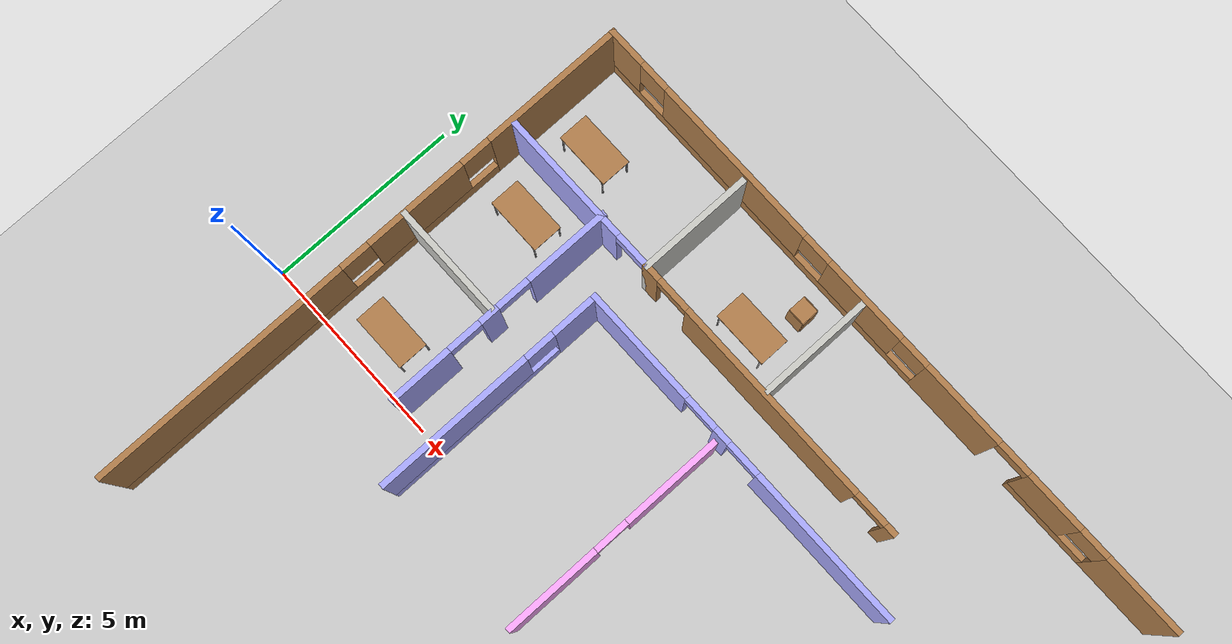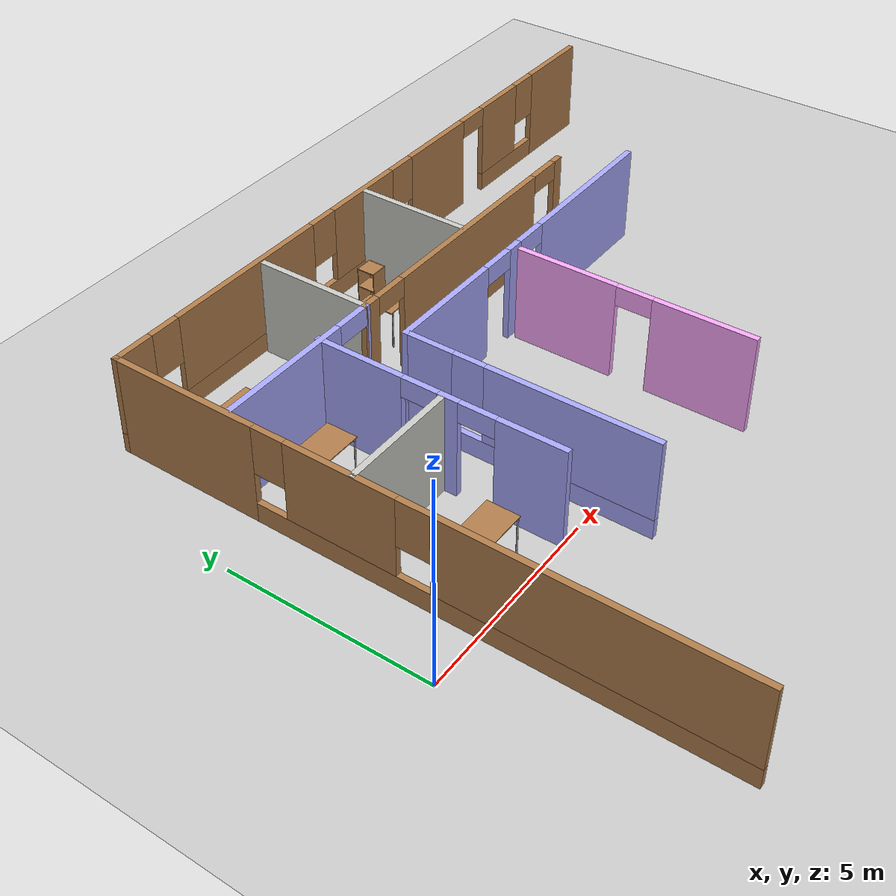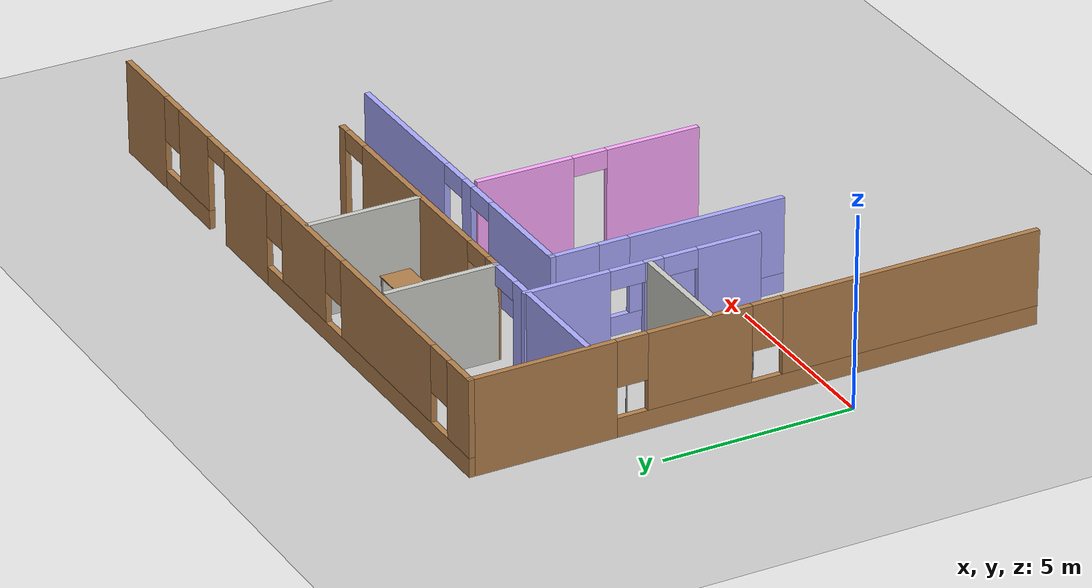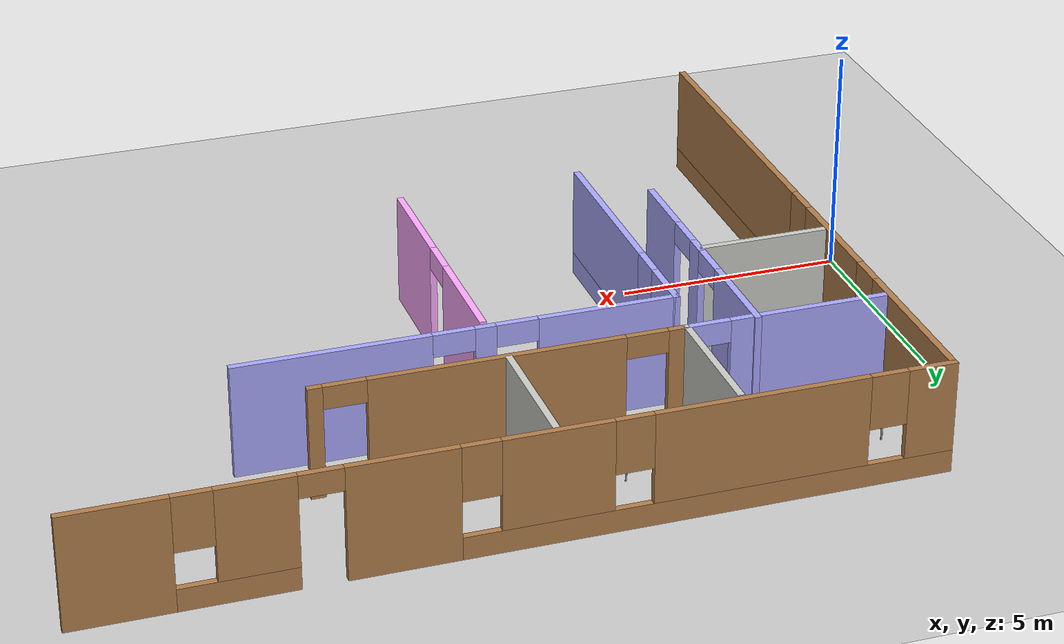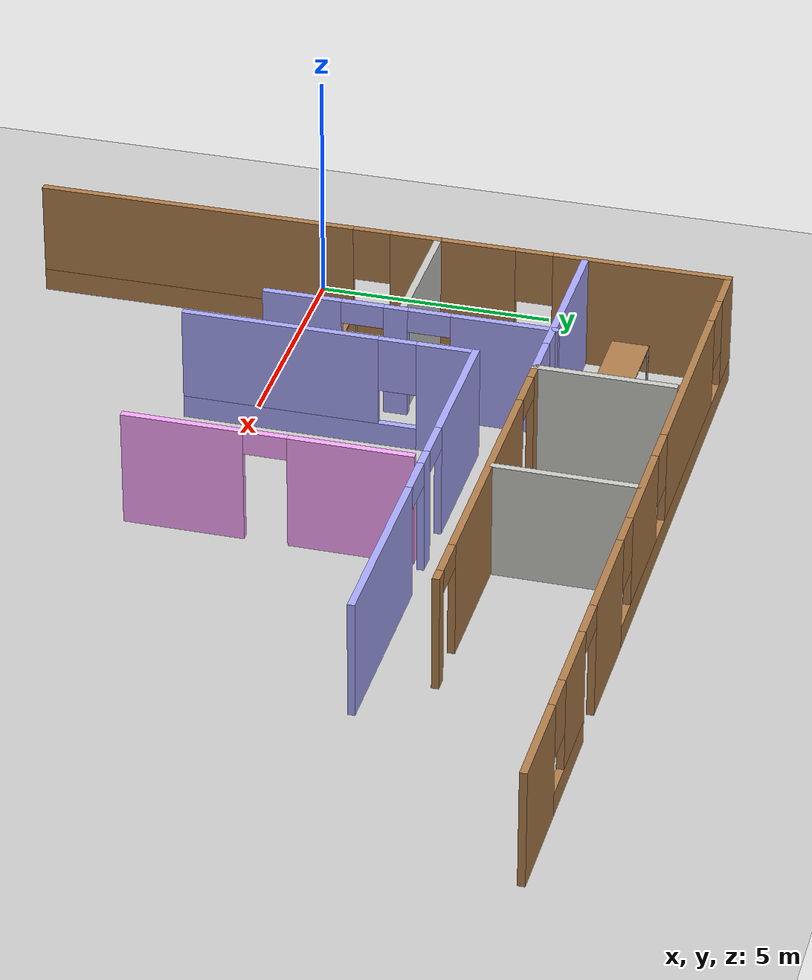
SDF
<sdf version="1.6">
 <world name="default">
  <model name="ground_plane">
   <static>1</static>
   <link name="link">
    <collision name="collision">
     <geometry><plane><normal>0 0 1</normal><size>100 100</size></plane></geometry>
     <surface>
      <contact><collide_bitmask>65535</collide_bitmask></contact>
      <friction><ode><mu>100</mu><mu2>50</mu2></ode></friction>
     </surface>
    </collision>
    <visual name="visual">
     <cast_shadows>0</cast_shadows>
     <geometry><plane><normal>0 0 1</normal><size>100 100</size></plane></geometry>
     <material>
      <script><uri>file://media/materials/scripts/gazebo.material</uri><name>Gazebo/Grey</name></script>
     </material>
    </visual>
   </link>
  </model>
  <model name="newOffice">
   <pose>10.3935 1.72643 0 0 -0 0</pose>
   <link name="Wall_0">
    <pose>-8.92098 -0.018654 0 0 0 -1.5708</pose>
    <visual name="Wall_0_Visual_0">
     <pose>-5.60223 0 1.25 0 -0 0</pose>
     <geometry><box><size>3.79554 0.15 2.5</size></box></geometry>
     <material>
      <script><uri>file://media/materials/scripts/gazebo.material</uri><name>Gazebo/Wood</name></script>
      <ambient>1 0.666667 1 1</ambient>
     </material>
     <meta><layer>0</layer></meta>
    </visual>
    <collision name="Wall_0_Collision_0">
     <geometry><box><size>3.79554 0.15 2.5</size></box></geometry>
     <pose>-5.60223 0 1.25 0 -0 0</pose>
    </collision>
    <visual name="Wall_0_Visual_1">
     <pose>1.89777 0 0.25 0 -0 0</pose>
     <geometry><box><size>11.2045 0.15 0.5</size></box></geometry>
     <material>
      <script><uri>file://media/materials/scripts/gazebo.material</uri><name>Gazebo/Wood</name></script>
      <ambient>1 0.666667 1 1</ambient>
     </material>
     <meta><layer>0</layer></meta>
    </visual>
    <collision name="Wall_0_Collision_1">
     <geometry><box><size>11.2045 0.15 0.5</size></box></geometry>
     <pose>1.89777 0 0.25 0 -0 0</pose>
    </collision>
    <visual name="Wall_0_Visual_2">
     <pose>-1.54552 0 1.5 0 -0 0</pose>
     <geometry><box><size>2.71788 0.15 2</size></box></geometry>
     <material>
      <script><uri>file://media/materials/scripts/gazebo.material</uri><name>Gazebo/Wood</name></script>
      <ambient>1 0.666667 1 1</ambient>
     </material>
     <meta><layer>0</layer></meta>
    </visual>
    <collision name="Wall_0_Collision_2">
     <geometry><box><size>2.71788 0.15 2</size></box></geometry>
     <pose>-1.54552 0 1.5 0 -0 0</pose>
    </collision>
    <visual name="Wall_0_Visual_3">
     <pose>4.05671 0 1.5 0 -0 0</pose>
     <geometry><box><size>6.88658 0.15 2</size></box></geometry>
     <material>
      <script><uri>file://media/materials/scripts/gazebo.material</uri><name>Gazebo/Wood</name></script>
      <ambient>1 0.666667 1 1</ambient>
     </material>
     <meta><layer>0</layer></meta>
    </visual>
    <collision name="Wall_0_Collision_3">
     <geometry><box><size>6.88658 0.15 2</size></box></geometry>
     <pose>4.05671 0 1.5 0 -0 0</pose>
    </collision>
    <visual name="Wall_0_Visual_4">
     <pose>-3.30446 0 1.9 0 -0 0</pose>
     <geometry><box><size>0.8 0.15 1.2</size></box></geometry>
     <material>
      <script><uri>file://media/materials/scripts/gazebo.material</uri><name>Gazebo/Wood</name></script>
      <ambient>1 0.666667 1 1</ambient>
     </material>
     <meta><layer>0</layer></meta>
    </visual>
    <collision name="Wall_0_Collision_4">
     <geometry><box><size>0.8 0.15 1.2</size></box></geometry>
     <pose>-3.30446 0 1.9 0 -0 0</pose>
    </collision>
    <visual name="Wall_0_Visual_5">
     <pose>0.213419 0 1.9 0 -0 0</pose>
     <geometry><box><size>0.8 0.15 1.2</size></box></geometry>
     <material>
      <script><uri>file://media/materials/scripts/gazebo.material</uri><name>Gazebo/Wood</name></script>
      <ambient>1 0.666667 1 1</ambient>
     </material>
     <meta><layer>0</layer></meta>
    </visual>
    <collision name="Wall_0_Collision_5">
     <geometry><box><size>0.8 0.15 1.2</size></box></geometry>
     <pose>0.213419 0 1.9 0 -0 0</pose>
    </collision>
   </link>
   <link name="Wall_11">
    <collision name="Wall_11_Collision">
     <geometry><box><size>3 0.15 2.5</size></box></geometry>
     <pose>0 0 1.25 0 -0 0</pose>
    </collision>
    <visual name="Wall_11_Visual">
     <pose>0 0 1.25 0 -0 0</pose>
     <geometry><box><size>3 0.15 2.5</size></box></geometry>
     <material>
      <script><uri>file://media/materials/scripts/gazebo.material</uri><name>Gazebo/CeilingTiled</name></script>
      <ambient>0.760784 0.662745 0.627451 1</ambient>
     </material>
     <meta><layer>0</layer></meta>
    </visual>
    <pose>-0.660428 5.89112 0 0 -0 1.5708</pose>
   </link>
   <link name="Wall_20">
    <pose>-5.96415 1.3696 0 0 0 -1.5708</pose>
    <visual name="Wall_20_Visual_0">
     <pose>-1.99614 0 1.25 0 -0 0</pose>
     <geometry><box><size>2.25772 0.15 2.5</size></box></geometry>
     <material>
      <script><uri>file://media/materials/scripts/gazebo.material</uri><name>Gazebo/Grey</name></script>
      <ambient>0.666667 0.666667 1 1</ambient>
     </material>
     <meta><layer>0</layer></meta>
    </visual>
    <collision name="Wall_20_Collision_0">
     <geometry><box><size>2.25772 0.15 2.5</size></box></geometry>
     <pose>-1.99614 0 1.25 0 -0 0</pose>
    </collision>
    <visual name="Wall_20_Visual_1">
     <pose>0.286292 0 1.25 0 -0 0</pose>
     <geometry><box><size>0.507151 0.15 2.5</size></box></geometry>
     <material>
      <script><uri>file://media/materials/scripts/gazebo.material</uri><name>Gazebo/Grey</name></script>
      <ambient>0.666667 0.666667 1 1</ambient>
     </material>
     <meta><layer>0</layer></meta>
    </visual>
    <collision name="Wall_20_Collision_1">
     <geometry><box><size>0.507151 0.15 2.5</size></box></geometry>
     <pose>0.286292 0 1.25 0 -0 0</pose>
    </collision>
    <visual name="Wall_20_Visual_2">
     <pose>2.28243 0 1.25 0 -0 0</pose>
     <geometry><box><size>1.68513 0.15 2.5</size></box></geometry>
     <material>
      <script><uri>file://media/materials/scripts/gazebo.material</uri><name>Gazebo/Grey</name></script>
      <ambient>0.666667 0.666667 1 1</ambient>
     </material>
     <meta><layer>0</layer></meta>
    </visual>
    <collision name="Wall_20_Collision_2">
     <geometry><box><size>1.68513 0.15 2.5</size></box></geometry>
     <pose>2.28243 0 1.25 0 -0 0</pose>
    </collision>
    <visual name="Wall_20_Visual_3">
     <pose>-0.417283 0 2.25 0 -0 0</pose>
     <geometry><box><size>0.9 0.15 0.5</size></box></geometry>
     <material>
      <script><uri>file://media/materials/scripts/gazebo.material</uri><name>Gazebo/Grey</name></script>
      <ambient>0.666667 0.666667 1 1</ambient>
     </material>
     <meta><layer>0</layer></meta>
    </visual>
    <collision name="Wall_20_Collision_3">
     <geometry><box><size>0.9 0.15 0.5</size></box></geometry>
     <pose>-0.417283 0 2.25 0 -0 0</pose>
    </collision>
    <visual name="Wall_20_Visual_4">
     <pose>0.989867 0 2.25 0 -0 0</pose>
     <geometry><box><size>0.9 0.15 0.5</size></box></geometry>
     <material>
      <script><uri>file://media/materials/scripts/gazebo.material</uri><name>Gazebo/Grey</name></script>
      <ambient>0.666667 0.666667 1 1</ambient>
     </material>
     <meta><layer>0</layer></meta>
    </visual>
    <collision name="Wall_20_Collision_4">
     <geometry><box><size>0.9 0.15 0.5</size></box></geometry>
     <pose>0.989867 0 2.25 0 -0 0</pose>
    </collision>
   </link>
   <link name="Wall_23">
    <collision name="Wall_23_Collision">
     <geometry><box><size>3 0.15 2.5</size></box></geometry>
     <pose>0 0 1.25 0 -0 0</pose>
    </collision>
    <visual name="Wall_23_Visual">
     <pose>0 0 1.25 0 -0 0</pose>
     <geometry><box><size>3 0.15 2.5</size></box></geometry>
     <material>
      <script><uri>file://media/materials/scripts/gazebo.material</uri><name>Gazebo/CeilingTiled</name></script>
      <ambient>0.760784 0.662745 0.627451 1</ambient>
     </material>
     <meta><layer>0</layer></meta>
    </visual>
    <pose>-7.47016 1.20945 0 0 -0 0</pose>
   </link>
   <link name="Wall_28">
    <pose>-4.70801 0.020406 0 0 0 -1.5708</pose>
    <visual name="Wall_28_Visual_0">
     <pose>-2.47749 0 1.25 0 -0 0</pose>
     <geometry><box><size>1.29502 0.15 2.5</size></box></geometry>
     <material>
      <script><uri>file://media/materials/scripts/gazebo.material</uri><name>Gazebo/Grey</name></script>
      <ambient>0.666667 0.666667 1 1</ambient>
     </material>
     <meta><layer>0</layer></meta>
    </visual>
    <collision name="Wall_28_Collision_0">
     <geometry><box><size>1.29502 0.15 2.5</size></box></geometry>
     <pose>-2.47749 0 1.25 0 -0 0</pose>
    </collision>
    <visual name="Wall_28_Visual_1">
     <pose>0.647508 0 0.25 0 -0 0</pose>
     <geometry><box><size>4.95498 0.15 0.5</size></box></geometry>
     <material>
      <script><uri>file://media/materials/scripts/gazebo.material</uri><name>Gazebo/Grey</name></script>
      <ambient>0.666667 0.666667 1 1</ambient>
     </material>
     <meta><layer>0</layer></meta>
    </visual>
    <collision name="Wall_28_Collision_1">
     <geometry><box><size>4.95498 0.15 0.5</size></box></geometry>
     <pose>0.647508 0 0.25 0 -0 0</pose>
    </collision>
    <visual name="Wall_28_Visual_2">
     <pose>1.04751 0 1.5 0 -0 0</pose>
     <geometry><box><size>4.15498 0.15 2</size></box></geometry>
     <material>
      <script><uri>file://media/materials/scripts/gazebo.material</uri><name>Gazebo/Grey</name></script>
      <ambient>0.666667 0.666667 1 1</ambient>
     </material>
     <meta><layer>0</layer></meta>
    </visual>
    <collision name="Wall_28_Collision_2">
     <geometry><box><size>4.15498 0.15 2</size></box></geometry>
     <pose>1.04751 0 1.5 0 -0 0</pose>
    </collision>
    <visual name="Wall_28_Visual_3">
     <pose>-1.42998 0 1.9 0 -0 0</pose>
     <geometry><box><size>0.8 0.15 1.2</size></box></geometry>
     <material>
      <script><uri>file://media/materials/scripts/gazebo.material</uri><name>Gazebo/Grey</name></script>
      <ambient>0.666667 0.666667 1 1</ambient>
     </material>
     <meta><layer>0</layer></meta>
    </visual>
    <collision name="Wall_28_Collision_3">
     <geometry><box><size>0.8 0.15 1.2</size></box></geometry>
     <pose>-1.42998 0 1.9 0 -0 0</pose>
    </collision>
   </link>
   <link name="Wall_3">
    <pose>0.004022 7.40635 0 0 -0 3.14159</pose>
    <visual name="Wall_3_Visual_0">
     <pose>-7.91801 0 1.25 0 -0 0</pose>
     <geometry><box><size>2.16398 0.15 2.5</size></box></geometry>
     <material>
      <script><uri>file://media/materials/scripts/gazebo.material</uri><name>Gazebo/Wood</name></script>
      <ambient>1 0.666667 1 1</ambient>
     </material>
     <meta><layer>0</layer></meta>
    </visual>
    <collision name="Wall_3_Collision_0">
     <geometry><box><size>2.16398 0.15 2.5</size></box></geometry>
     <pose>-7.91801 0 1.25 0 -0 0</pose>
    </collision>
    <visual name="Wall_3_Visual_1">
     <pose>-2.4037 0 1.25 0 -0 0</pose>
     <geometry><box><size>2.2702 0.15 2.5</size></box></geometry>
     <material>
      <script><uri>file://media/materials/scripts/gazebo.material</uri><name>Gazebo/Wood</name></script>
      <ambient>1 0.666667 1 1</ambient>
     </material>
     <meta><layer>0</layer></meta>
    </visual>
    <collision name="Wall_3_Collision_1">
     <geometry><box><size>2.2702 0.15 2.5</size></box></geometry>
     <pose>-2.4037 0 1.25 0 -0 0</pose>
    </collision>
    <visual name="Wall_3_Visual_2">
     <pose>-5.63741 0 0.25 0 -0 0</pose>
     <geometry><box><size>2.39722 0.15 0.5</size></box></geometry>
     <material>
      <script><uri>file://media/materials/scripts/gazebo.material</uri><name>Gazebo/Wood</name></script>
      <ambient>1 0.666667 1 1</ambient>
     </material>
     <meta><layer>0</layer></meta>
    </visual>
    <collision name="Wall_3_Collision_2">
     <geometry><box><size>2.39722 0.15 0.5</size></box></geometry>
     <pose>-5.63741 0 0.25 0 -0 0</pose>
    </collision>
    <visual name="Wall_3_Visual_3">
     <pose>3.8657 0 0.25 0 -0 0</pose>
     <geometry><box><size>10.2686 0.15 0.5</size></box></geometry>
     <material>
      <script><uri>file://media/materials/scripts/gazebo.material</uri><name>Gazebo/Wood</name></script>
      <ambient>1 0.666667 1 1</ambient>
     </material>
     <meta><layer>0</layer></meta>
    </visual>
    <collision name="Wall_3_Collision_3">
     <geometry><box><size>10.2686 0.15 0.5</size></box></geometry>
     <pose>3.8657 0 0.25 0 -0 0</pose>
    </collision>
    <visual name="Wall_3_Visual_4">
     <pose>-5.23741 0 1.5 0 -0 0</pose>
     <geometry><box><size>1.59722 0.15 2</size></box></geometry>
     <material>
      <script><uri>file://media/materials/scripts/gazebo.material</uri><name>Gazebo/Wood</name></script>
      <ambient>1 0.666667 1 1</ambient>
     </material>
     <meta><layer>0</layer></meta>
    </visual>
    <collision name="Wall_3_Collision_4">
     <geometry><box><size>1.59722 0.15 2</size></box></geometry>
     <pose>-5.23741 0 1.5 0 -0 0</pose>
    </collision>
    <visual name="Wall_3_Visual_5">
     <pose>-5.23741 0 1.5 0 -0 0</pose>
     <geometry><box><size>1.59722 0.15 2</size></box></geometry>
     <material>
      <script><uri>file://media/materials/scripts/gazebo.material</uri><name>Gazebo/Wood</name></script>
      <ambient>1 0.666667 1 1</ambient>
     </material>
     <meta><layer>0</layer></meta>
    </visual>
    <collision name="Wall_3_Collision_5">
     <geometry><box><size>1.59722 0.15 2</size></box></geometry>
     <pose>-5.23741 0 1.5 0 -0 0</pose>
    </collision>
    <visual name="Wall_3_Visual_6">
     <pose>0.676212 0 1.5 0 -0 0</pose>
     <geometry><box><size>2.28961 0.15 2</size></box></geometry>
     <material>
      <script><uri>file://media/materials/scripts/gazebo.material</uri><name>Gazebo/Wood</name></script>
      <ambient>1 0.666667 1 1</ambient>
     </material>
     <meta><layer>0</layer></meta>
    </visual>
    <collision name="Wall_3_Collision_6">
     <geometry><box><size>2.28961 0.15 2</size></box></geometry>
     <pose>0.676212 0 1.5 0 -0 0</pose>
    </collision>
    <visual name="Wall_3_Visual_7">
     <pose>4.88237 0 1.5 0 -0 0</pose>
     <geometry><box><size>4.5227 0.15 2</size></box></geometry>
     <material>
      <script><uri>file://media/materials/scripts/gazebo.material</uri><name>Gazebo/Wood</name></script>
      <ambient>1 0.666667 1 1</ambient>
     </material>
     <meta><layer>0</layer></meta>
    </visual>
    <collision name="Wall_3_Collision_7">
     <geometry><box><size>4.5227 0.15 2</size></box></geometry>
     <pose>4.88237 0 1.5 0 -0 0</pose>
    </collision>
    <visual name="Wall_3_Visual_8">
     <pose>8.47186 0 1.5 0 -0 0</pose>
     <geometry><box><size>1.05628 0.15 2</size></box></geometry>
     <material>
      <script><uri>file://media/materials/scripts/gazebo.material</uri><name>Gazebo/Wood</name></script>
      <ambient>1 0.666667 1 1</ambient>
     </material>
     <meta><layer>0</layer></meta>
    </visual>
    <collision name="Wall_3_Collision_8">
     <geometry><box><size>1.05628 0.15 2</size></box></geometry>
     <pose>8.47186 0 1.5 0 -0 0</pose>
    </collision>
    <visual name="Wall_3_Visual_9">
     <pose>-6.43602 0 1.9 0 -0 0</pose>
     <geometry><box><size>0.8 0.15 1.2</size></box></geometry>
     <material>
      <script><uri>file://media/materials/scripts/gazebo.material</uri><name>Gazebo/Wood</name></script>
      <ambient>1 0.666667 1 1</ambient>
     </material>
     <meta><layer>0</layer></meta>
    </visual>
    <collision name="Wall_3_Collision_9">
     <geometry><box><size>0.8 0.15 1.2</size></box></geometry>
     <pose>-6.43602 0 1.9 0 -0 0</pose>
    </collision>
    <visual name="Wall_3_Visual_10">
     <pose>-0.868594 0 1.9 0 -0 0</pose>
     <geometry><box><size>0.8 0.15 1.2</size></box></geometry>
     <material>
      <script><uri>file://media/materials/scripts/gazebo.material</uri><name>Gazebo/Wood</name></script>
      <ambient>1 0.666667 1 1</ambient>
     </material>
     <meta><layer>0</layer></meta>
    </visual>
    <collision name="Wall_3_Collision_10">
     <geometry><box><size>0.8 0.15 1.2</size></box></geometry>
     <pose>-0.868594 0 1.9 0 -0 0</pose>
    </collision>
    <visual name="Wall_3_Visual_11">
     <pose>2.22102 0 1.9 0 -0 0</pose>
     <geometry><box><size>0.8 0.15 1.2</size></box></geometry>
     <material>
      <script><uri>file://media/materials/scripts/gazebo.material</uri><name>Gazebo/Wood</name></script>
      <ambient>1 0.666667 1 1</ambient>
     </material>
     <meta><layer>0</layer></meta>
    </visual>
    <collision name="Wall_3_Collision_11">
     <geometry><box><size>0.8 0.15 1.2</size></box></geometry>
     <pose>2.22102 0 1.9 0 -0 0</pose>
    </collision>
    <visual name="Wall_3_Visual_12">
     <pose>7.54372 0 1.9 0 -0 0</pose>
     <geometry><box><size>0.8 0.15 1.2</size></box></geometry>
     <material>
      <script><uri>file://media/materials/scripts/gazebo.material</uri><name>Gazebo/Wood</name></script>
      <ambient>1 0.666667 1 1</ambient>
     </material>
     <meta><layer>0</layer></meta>
    </visual>
    <collision name="Wall_3_Collision_12">
     <geometry><box><size>0.8 0.15 1.2</size></box></geometry>
     <pose>7.54372 0 1.9 0 -0 0</pose>
    </collision>
    <visual name="Wall_3_Visual_13">
     <pose>-3.9888 0 2.25 0 -0 0</pose>
     <geometry><box><size>0.9 0.15 0.5</size></box></geometry>
     <material>
      <script><uri>file://media/materials/scripts/gazebo.material</uri><name>Gazebo/Wood</name></script>
      <ambient>1 0.666667 1 1</ambient>
     </material>
     <meta><layer>0</layer></meta>
    </visual>
    <collision name="Wall_3_Collision_13">
     <geometry><box><size>0.9 0.15 0.5</size></box></geometry>
     <pose>-3.9888 0 2.25 0 -0 0</pose>
    </collision>
    <visual name="Wall_3_Visual_14">
     <pose>-3.9888 0 2.25 0 -0 0</pose>
     <geometry><box><size>0.9 0.15 0.5</size></box></geometry>
     <material>
      <script><uri>file://media/materials/scripts/gazebo.material</uri><name>Gazebo/Wood</name></script>
      <ambient>1 0.666667 1 1</ambient>
     </material>
     <meta><layer>0</layer></meta>
    </visual>
    <collision name="Wall_3_Collision_14">
     <geometry><box><size>0.9 0.15 0.5</size></box></geometry>
     <pose>-3.9888 0 2.25 0 -0 0</pose>
    </collision>
   </link>
   <link name="Wall_30">
    <pose>-0.60801 -0.104594 0 0 -0 1.5708</pose>
    <visual name="Wall_30_Visual_0">
     <pose>-1.74285 0 1.25 0 -0 0</pose>
     <geometry><box><size>2.51429 0.15 2.5</size></box></geometry>
     <material>
      <script><uri>file://media/materials/scripts/gazebo.material</uri><name>Gazebo/Grey</name></script>
      <ambient>1 0.666667 1 1</ambient>
     </material>
     <meta><layer>0</layer></meta>
    </visual>
    <collision name="Wall_30_Collision_0">
     <geometry><box><size>2.51429 0.15 2.5</size></box></geometry>
     <pose>-1.74285 0 1.25 0 -0 0</pose>
    </collision>
    <visual name="Wall_30_Visual_1">
     <pose>1.70715 0 1.25 0 -0 0</pose>
     <geometry><box><size>2.58571 0.15 2.5</size></box></geometry>
     <material>
      <script><uri>file://media/materials/scripts/gazebo.material</uri><name>Gazebo/Grey</name></script>
      <ambient>1 0.666667 1 1</ambient>
     </material>
     <meta><layer>0</layer></meta>
    </visual>
    <collision name="Wall_30_Collision_1">
     <geometry><box><size>2.58571 0.15 2.5</size></box></geometry>
     <pose>1.70715 0 1.25 0 -0 0</pose>
    </collision>
    <visual name="Wall_30_Visual_2">
     <pose>-0.035708 0 2.25 0 -0 0</pose>
     <geometry><box><size>0.9 0.15 0.5</size></box></geometry>
     <material>
      <script><uri>file://media/materials/scripts/gazebo.material</uri><name>Gazebo/Grey</name></script>
      <ambient>1 0.666667 1 1</ambient>
     </material>
     <meta><layer>0</layer></meta>
    </visual>
    <collision name="Wall_30_Collision_2">
     <geometry><box><size>0.9 0.15 0.5</size></box></geometry>
     <pose>-0.035708 0 2.25 0 -0 0</pose>
    </collision>
   </link>
   <link name="Wall_32">
    <pose>-0.033009 3.07041 0 0 -0 0</pose>
    <visual name="Wall_32_Visual_0">
     <pose>-3.21785 0 1.25 0 -0 0</pose>
     <geometry><box><size>3.06431 0.15 2.5</size></box></geometry>
     <material>
      <script><uri>file://media/materials/scripts/gazebo.material</uri><name>Gazebo/Grey</name></script>
      <ambient>0.666667 0.666667 1 1</ambient>
     </material>
     <meta><layer>0</layer></meta>
    </visual>
    <collision name="Wall_32_Collision_0">
     <geometry><box><size>3.06431 0.15 2.5</size></box></geometry>
     <pose>-3.21785 0 1.25 0 -0 0</pose>
    </collision>
    <visual name="Wall_32_Visual_1">
     <pose>-0.562706 0 1.25 0 -0 0</pose>
     <geometry><box><size>0.44597 0.15 2.5</size></box></geometry>
     <material>
      <script><uri>file://media/materials/scripts/gazebo.material</uri><name>Gazebo/Grey</name></script>
      <ambient>0.666667 0.666667 1 1</ambient>
     </material>
     <meta><layer>0</layer></meta>
    </visual>
    <collision name="Wall_32_Collision_1">
     <geometry><box><size>0.44597 0.15 2.5</size></box></geometry>
     <pose>-0.562706 0 1.25 0 -0 0</pose>
    </collision>
    <visual name="Wall_32_Visual_2">
     <pose>2.65514 0 1.25 0 -0 0</pose>
     <geometry><box><size>4.18972 0.15 2.5</size></box></geometry>
     <material>
      <script><uri>file://media/materials/scripts/gazebo.material</uri><name>Gazebo/Grey</name></script>
      <ambient>0.666667 0.666667 1 1</ambient>
     </material>
     <meta><layer>0</layer></meta>
    </visual>
    <collision name="Wall_32_Collision_2">
     <geometry><box><size>4.18972 0.15 2.5</size></box></geometry>
     <pose>2.65514 0 1.25 0 -0 0</pose>
    </collision>
    <visual name="Wall_32_Visual_3">
     <pose>-1.23569 0 2.25 0 -0 0</pose>
     <geometry><box><size>0.9 0.15 0.5</size></box></geometry>
     <material>
      <script><uri>file://media/materials/scripts/gazebo.material</uri><name>Gazebo/Grey</name></script>
      <ambient>0.666667 0.666667 1 1</ambient>
     </material>
     <meta><layer>0</layer></meta>
    </visual>
    <collision name="Wall_32_Collision_3">
     <geometry><box><size>0.9 0.15 0.5</size></box></geometry>
     <pose>-1.23569 0 2.25 0 -0 0</pose>
    </collision>
    <visual name="Wall_32_Visual_4">
     <pose>0.110279 0 2.25 0 -0 0</pose>
     <geometry><box><size>0.9 0.15 0.5</size></box></geometry>
     <material>
      <script><uri>file://media/materials/scripts/gazebo.material</uri><name>Gazebo/Grey</name></script>
      <ambient>0.666667 0.666667 1 1</ambient>
     </material>
     <meta><layer>0</layer></meta>
    </visual>
    <collision name="Wall_32_Collision_4">
     <geometry><box><size>0.9 0.15 0.5</size></box></geometry>
     <pose>0.110279 0 2.25 0 -0 0</pose>
    </collision>
   </link>
   <link name="Wall_5">
    <pose>-6.62711 4.37308 0 0 -0 0</pose>
    <visual name="Wall_5_Visual_0">
     <pose>-0.506758 0 1.25 0 -0 0</pose>
     <geometry><box><size>3.48649 0.15 2.5</size></box></geometry>
     <material>
      <script><uri>file://media/materials/scripts/gazebo.material</uri><name>Gazebo/Grey</name></script>
      <ambient>0.666667 0.666667 1 1</ambient>
     </material>
     <meta><layer>0</layer></meta>
    </visual>
    <collision name="Wall_5_Collision_0">
     <geometry><box><size>3.48649 0.15 2.5</size></box></geometry>
     <pose>-0.506758 0 1.25 0 -0 0</pose>
    </collision>
    <visual name="Wall_5_Visual_1">
     <pose>2.19324 0 1.25 0 -0 0</pose>
     <geometry><box><size>0.113515 0.15 2.5</size></box></geometry>
     <material>
      <script><uri>file://media/materials/scripts/gazebo.material</uri><name>Gazebo/Grey</name></script>
      <ambient>0.666667 0.666667 1 1</ambient>
     </material>
     <meta><layer>0</layer></meta>
    </visual>
    <collision name="Wall_5_Collision_1">
     <geometry><box><size>0.113515 0.15 2.5</size></box></geometry>
     <pose>2.19324 0 1.25 0 -0 0</pose>
    </collision>
    <visual name="Wall_5_Visual_2">
     <pose>1.68649 0 2.25 0 -0 0</pose>
     <geometry><box><size>0.9 0.15 0.5</size></box></geometry>
     <material>
      <script><uri>file://media/materials/scripts/gazebo.material</uri><name>Gazebo/Grey</name></script>
      <ambient>0.666667 0.666667 1 1</ambient>
     </material>
     <meta><layer>0</layer></meta>
    </visual>
    <collision name="Wall_5_Collision_2">
     <geometry><box><size>0.9 0.15 0.5</size></box></geometry>
     <pose>1.68649 0 2.25 0 -0 0</pose>
    </collision>
   </link>
   <link name="Wall_6">
    <collision name="Wall_6_Collision">
     <geometry><box><size>3 0.15 2.5</size></box></geometry>
     <pose>0 0 1.25 0 -0 0</pose>
    </collision>
    <visual name="Wall_6_Visual">
     <pose>0 0 1.25 0 -0 0</pose>
     <geometry><box><size>3 0.15 2.5</size></box></geometry>
     <material>
      <script><uri>file://media/materials/scripts/gazebo.material</uri><name>Gazebo/CeilingTiled</name></script>
      <ambient>0.760784 0.662745 0.627451 1</ambient>
     </material>
     <meta><layer>0</layer></meta>
    </visual>
    <pose>-4.45211 5.79808 0 0 -0 1.5708</pose>
   </link>
   <link name="Wall_8">
    <pose>-0.527113 4.37308 0 0 -0 0</pose>
    <visual name="Wall_8_Visual_0">
     <pose>-3.75822 0 1.25 0 -0 0</pose>
     <geometry><box><size>0.483556 0.15 2.5</size></box></geometry>
     <material>
      <script><uri>file://media/materials/scripts/gazebo.material</uri><name>Gazebo/Wood</name></script>
      <ambient>0.666667 0.666667 1 1</ambient>
     </material>
     <meta><layer>0</layer></meta>
    </visual>
    <collision name="Wall_8_Collision_0">
     <geometry><box><size>0.483556 0.15 2.5</size></box></geometry>
     <pose>-3.75822 0 1.25 0 -0 0</pose>
    </collision>
    <visual name="Wall_8_Visual_1">
     <pose>0.08435 0 1.25 0 -0 0</pose>
     <geometry><box><size>5.40159 0.15 2.5</size></box></geometry>
     <material>
      <script><uri>file://media/materials/scripts/gazebo.material</uri><name>Gazebo/Wood</name></script>
      <ambient>0.666667 0.666667 1 1</ambient>
     </material>
     <meta><layer>0</layer></meta>
    </visual>
    <collision name="Wall_8_Collision_1">
     <geometry><box><size>5.40159 0.15 2.5</size></box></geometry>
     <pose>0.08435 0 1.25 0 -0 0</pose>
    </collision>
    <visual name="Wall_8_Visual_2">
     <pose>3.84257 0 1.25 0 -0 0</pose>
     <geometry><box><size>0.314856 0.15 2.5</size></box></geometry>
     <material>
      <script><uri>file://media/materials/scripts/gazebo.material</uri><name>Gazebo/Wood</name></script>
      <ambient>0.666667 0.666667 1 1</ambient>
     </material>
     <meta><layer>0</layer></meta>
    </visual>
    <collision name="Wall_8_Collision_2">
     <geometry><box><size>0.314856 0.15 2.5</size></box></geometry>
     <pose>3.84257 0 1.25 0 -0 0</pose>
    </collision>
    <visual name="Wall_8_Visual_3">
     <pose>-3.06644 0 2.25 0 -0 0</pose>
     <geometry><box><size>0.9 0.15 0.5</size></box></geometry>
     <material>
      <script><uri>file://media/materials/scripts/gazebo.material</uri><name>Gazebo/Wood</name></script>
      <ambient>0.666667 0.666667 1 1</ambient>
     </material>
     <meta><layer>0</layer></meta>
    </visual>
    <collision name="Wall_8_Collision_3">
     <geometry><box><size>0.9 0.15 0.5</size></box></geometry>
     <pose>-3.06644 0 2.25 0 -0 0</pose>
    </collision>
    <visual name="Wall_8_Visual_4">
     <pose>3.23514 0 2.25 0 -0 0</pose>
     <geometry><box><size>0.9 0.15 0.5</size></box></geometry>
     <material>
      <script><uri>file://media/materials/scripts/gazebo.material</uri><name>Gazebo/Wood</name></script>
      <ambient>0.666667 0.666667 1 1</ambient>
     </material>
     <meta><layer>0</layer></meta>
    </visual>
    <collision name="Wall_8_Collision_4">
     <geometry><box><size>0.9 0.15 0.5</size></box></geometry>
     <pose>3.23514 0 2.25 0 -0 0</pose>
    </collision>
   </link>
   <static>1</static>
  </model>
  <model name="cabinet_0">
   <static>1</static>
   <link name="cabinet_bottom_plate">
    <inertial>
     <pose>0 0 -1 0 -0 0</pose>
     <inertia><ixx>2.05</ixx><ixy>0</ixy><ixz>0</ixz><iyy>2.05</iyy><iyz>0</iyz><izz>2.05</izz></inertia>
     <mass>25</mass>
    </inertial>
    <collision name="cabinet_bottom_plate_geom">
     <pose>0 0 0.01 0 -0 0</pose>
     <geometry><box><size>0.45 0.45 0.02</size></box></geometry>
    </collision>
    <visual name="cabinet_bottom_plate_geom_visual">
     <pose>0 0 0.01 0 -0 0</pose>
     <geometry><box><size>0.45 0.45 0.02</size></box></geometry>
     <material>
      <script><uri>file://media/materials/scripts/gazebo.material</uri><name>Gazebo/Wood</name></script>
     </material>
    </visual>
    <collision name="cabinet_bottom_plate_geom_cabinet_back_plate">
     <pose>0.235 0 0.51 0 -0 0</pose>
     <geometry><box><size>0.02 0.45 1.02</size></box></geometry>
    </collision>
    <visual name="cabinet_bottom_plate_geom_cabinet_back_plate_visual">
     <pose>0.235 0 0.51 0 -0 0</pose>
     <geometry><box><size>0.02 0.45 1.02</size></box></geometry>
     <material>
      <script><uri>file://media/materials/scripts/gazebo.material</uri><name>Gazebo/Wood</name></script>
     </material>
    </visual>
    <collision name="cabinet_bottom_plate_geom_cabinet_left_plate">
     <pose>0 0.235 0.51 0 -0 0</pose>
     <geometry><box><size>0.45 0.02 1.02</size></box></geometry>
    </collision>
    <visual name="cabinet_bottom_plate_geom_cabinet_left_plate_visual">
     <pose>0 0.235 0.51 0 -0 0</pose>
     <geometry><box><size>0.45 0.02 1.02</size></box></geometry>
     <material>
      <script><uri>file://media/materials/scripts/gazebo.material</uri><name>Gazebo/Wood</name></script>
     </material>
    </visual>
    <collision name="cabinet_bottom_plate_geom_cabinet_middle_plate">
     <pose>0 0 0.51 0 -0 0</pose>
     <geometry><box><size>0.45 0.45 0.02</size></box></geometry>
    </collision>
    <visual name="cabinet_bottom_plate_geom_cabinet_middle_plate_visual">
     <pose>0 0 0.51 0 -0 0</pose>
     <geometry><box><size>0.45 0.45 0.02</size></box></geometry>
     <material>
      <script><uri>file://media/materials/scripts/gazebo.material</uri><name>Gazebo/Wood</name></script>
     </material>
    </visual>
    <collision name="cabinet_bottom_plate_geom_cabinet_right_plate">
     <pose>0 -0.235 0.51 0 -0 0</pose>
     <geometry><box><size>0.45 0.02 1.02</size></box></geometry>
    </collision>
    <visual name="cabinet_bottom_plate_geom_cabinet_right_plate_visual">
     <pose>0 -0.235 0.51 0 -0 0</pose>
     <geometry><box><size>0.45 0.02 1.02</size></box></geometry>
     <material>
      <script><uri>file://media/materials/scripts/gazebo.material</uri><name>Gazebo/Wood</name></script>
     </material>
    </visual>
    <collision name="cabinet_bottom_plate_geom_cabinet_top_plate">
     <pose>0 0 1.01 0 -0 0</pose>
     <geometry><box><size>0.45 0.45 0.02</size></box></geometry>
    </collision>
    <visual name="cabinet_bottom_plate_geom_cabinet_top_plate_visual">
     <pose>0 0 1.01 0 -0 0</pose>
     <geometry><box><size>0.45 0.45 0.02</size></box></geometry>
     <material>
      <script><uri>file://media/materials/scripts/gazebo.material</uri><name>Gazebo/Wood</name></script>
     </material>
    </visual>
   </link>
   <pose>8.87818 8.25168 0 0 -0 0</pose>
  </model>
  <model name="table_clone_3">
   <static>1</static>
   <link name="link">
    <collision name="surface">
     <pose>0 0 1 0 -0 0</pose>
     <geometry><box><size>1.5 0.8 0.03</size></box></geometry>
     <surface><friction><ode><mu>0.6</mu><mu2>0.6</mu2></ode></friction></surface>
    </collision>
    <visual name="visual1">
     <pose>0 0 1 0 -0 0</pose>
     <geometry><box><size>1.5 0.8 0.03</size></box></geometry>
     <material>
      <script><uri>file://media/materials/scripts/gazebo.material</uri><name>Gazebo/Wood</name></script>
     </material>
    </visual>
    <collision name="front_left_leg">
     <pose>0.68 0.38 0.5 0 -0 0</pose>
     <geometry><cylinder><radius>0.02</radius><length>1</length></cylinder></geometry>
    </collision>
    <visual name="front_left_leg">
     <pose>0.68 0.38 0.5 0 -0 0</pose>
     <geometry><cylinder><radius>0.02</radius><length>1</length></cylinder></geometry>
     <material>
      <script><uri>file://media/materials/scripts/gazebo.material</uri><name>Gazebo/Grey</name></script>
     </material>
    </visual>
    <collision name="front_right_leg">
     <pose>0.68 -0.38 0.5 0 -0 0</pose>
     <geometry><cylinder><radius>0.02</radius><length>1</length></cylinder></geometry>
    </collision>
    <visual name="front_right_leg">
     <pose>0.68 -0.38 0.5 0 -0 0</pose>
     <geometry><cylinder><radius>0.02</radius><length>1</length></cylinder></geometry>
     <material>
      <script><uri>file://media/materials/scripts/gazebo.material</uri><name>Gazebo/Grey</name></script>
     </material>
    </visual>
    <collision name="back_right_leg">
     <pose>-0.68 -0.38 0.5 0 -0 0</pose>
     <geometry><cylinder><radius>0.02</radius><length>1</length></cylinder></geometry>
    </collision>
    <visual name="back_right_leg">
     <pose>-0.68 -0.38 0.5 0 -0 0</pose>
     <geometry><cylinder><radius>0.02</radius><length>1</length></cylinder></geometry>
     <material>
      <script><uri>file://media/materials/scripts/gazebo.material</uri><name>Gazebo/Grey</name></script>
     </material>
    </visual>
    <collision name="back_left_leg">
     <pose>-0.68 0.38 0.5 0 -0 0</pose>
     <geometry><cylinder><radius>0.02</radius><length>1</length></cylinder></geometry>
    </collision>
    <visual name="back_left_leg">
     <pose>-0.68 0.38 0.5 0 -0 0</pose>
     <geometry><cylinder><radius>0.02</radius><length>1</length></cylinder></geometry>
     <material>
      <script><uri>file://media/materials/scripts/gazebo.material</uri><name>Gazebo/Grey</name></script>
     </material>
    </visual>
   </link>
   <pose>8.39846 7.10519 0 0 -0 0</pose>
  </model>
  <model name="table_clone_4">
   <static>1</static>
   <link name="link">
    <collision name="surface">
     <pose>0 0 1 0 -0 0</pose>
     <geometry><box><size>1.5 0.8 0.03</size></box></geometry>
     <surface><friction><ode><mu>0.6</mu><mu2>0.6</mu2></ode></friction></surface>
    </collision>
    <visual name="visual1">
     <pose>0 0 1 0 -0 0</pose>
     <geometry><box><size>1.5 0.8 0.03</size></box></geometry>
     <material>
      <script><uri>file://media/materials/scripts/gazebo.material</uri><name>Gazebo/Wood</name></script>
     </material>
    </visual>
    <collision name="front_left_leg">
     <pose>0.68 0.38 0.5 0 -0 0</pose>
     <geometry><cylinder><radius>0.02</radius><length>1</length></cylinder></geometry>
    </collision>
    <visual name="front_left_leg">
     <pose>0.68 0.38 0.5 0 -0 0</pose>
     <geometry><cylinder><radius>0.02</radius><length>1</length></cylinder></geometry>
     <material>
      <script><uri>file://media/materials/scripts/gazebo.material</uri><name>Gazebo/Grey</name></script>
     </material>
    </visual>
    <collision name="front_right_leg">
     <pose>0.68 -0.38 0.5 0 -0 0</pose>
     <geometry><cylinder><radius>0.02</radius><length>1</length></cylinder></geometry>
    </collision>
    <visual name="front_right_leg">
     <pose>0.68 -0.38 0.5 0 -0 0</pose>
     <geometry><cylinder><radius>0.02</radius><length>1</length></cylinder></geometry>
     <material>
      <script><uri>file://media/materials/scripts/gazebo.material</uri><name>Gazebo/Grey</name></script>
     </material>
    </visual>
    <collision name="back_right_leg">
     <pose>-0.68 -0.38 0.5 0 -0 0</pose>
     <geometry><cylinder><radius>0.02</radius><length>1</length></cylinder></geometry>
    </collision>
    <visual name="back_right_leg">
     <pose>-0.68 -0.38 0.5 0 -0 0</pose>
     <geometry><cylinder><radius>0.02</radius><length>1</length></cylinder></geometry>
     <material>
      <script><uri>file://media/materials/scripts/gazebo.material</uri><name>Gazebo/Grey</name></script>
     </material>
    </visual>
    <collision name="back_left_leg">
     <pose>-0.68 0.38 0.5 0 -0 0</pose>
     <geometry><cylinder><radius>0.02</radius><length>1</length></cylinder></geometry>
    </collision>
    <visual name="back_left_leg">
     <pose>-0.68 0.38 0.5 0 -0 0</pose>
     <geometry><cylinder><radius>0.02</radius><length>1</length></cylinder></geometry>
     <material>
      <script><uri>file://media/materials/scripts/gazebo.material</uri><name>Gazebo/Grey</name></script>
     </material>
    </visual>
   </link>
   <pose>2.9885 5.04858 0 0 -0 0</pose>
  </model>
  <model name="table_clone_5">
   <static>1</static>
   <link name="link">
    <collision name="surface">
     <pose>0 0 1 0 -0 0</pose>
     <geometry><box><size>1.5 0.8 0.03</size></box></geometry>
     <surface><friction><ode><mu>0.6</mu><mu2>0.6</mu2></ode></friction></surface>
    </collision>
    <visual name="visual1">
     <pose>0 0 1 0 -0 0</pose>
     <geometry><box><size>1.5 0.8 0.03</size></box></geometry>
     <material>
      <script><uri>file://media/materials/scripts/gazebo.material</uri><name>Gazebo/Wood</name></script>
     </material>
    </visual>
    <collision name="front_left_leg">
     <pose>0.68 0.38 0.5 0 -0 0</pose>
     <geometry><cylinder><radius>0.02</radius><length>1</length></cylinder></geometry>
    </collision>
    <visual name="front_left_leg">
     <pose>0.68 0.38 0.5 0 -0 0</pose>
     <geometry><cylinder><radius>0.02</radius><length>1</length></cylinder></geometry>
     <material>
      <script><uri>file://media/materials/scripts/gazebo.material</uri><name>Gazebo/Grey</name></script>
     </material>
    </visual>
    <collision name="front_right_leg">
     <pose>0.68 -0.38 0.5 0 -0 0</pose>
     <geometry><cylinder><radius>0.02</radius><length>1</length></cylinder></geometry>
    </collision>
    <visual name="front_right_leg">
     <pose>0.68 -0.38 0.5 0 -0 0</pose>
     <geometry><cylinder><radius>0.02</radius><length>1</length></cylinder></geometry>
     <material>
      <script><uri>file://media/materials/scripts/gazebo.material</uri><name>Gazebo/Grey</name></script>
     </material>
    </visual>
    <collision name="back_right_leg">
     <pose>-0.68 -0.38 0.5 0 -0 0</pose>
     <geometry><cylinder><radius>0.02</radius><length>1</length></cylinder></geometry>
    </collision>
    <visual name="back_right_leg">
     <pose>-0.68 -0.38 0.5 0 -0 0</pose>
     <geometry><cylinder><radius>0.02</radius><length>1</length></cylinder></geometry>
     <material>
      <script><uri>file://media/materials/scripts/gazebo.material</uri><name>Gazebo/Grey</name></script>
     </material>
    </visual>
    <collision name="back_left_leg">
     <pose>-0.68 0.38 0.5 0 -0 0</pose>
     <geometry><cylinder><radius>0.02</radius><length>1</length></cylinder></geometry>
    </collision>
    <visual name="back_left_leg">
     <pose>-0.68 0.38 0.5 0 -0 0</pose>
     <geometry><cylinder><radius>0.02</radius><length>1</length></cylinder></geometry>
     <material>
      <script><uri>file://media/materials/scripts/gazebo.material</uri><name>Gazebo/Grey</name></script>
     </material>
    </visual>
   </link>
   <pose>2.96933 0.985236 0 0 -0 0</pose>
  </model>
  <model name="table_clone_6">
   <static>1</static>
   <link name="link">
    <collision name="surface">
     <pose>0 0 1 0 -0 0</pose>
     <geometry><box><size>1.5 0.8 0.03</size></box></geometry>
     <surface><friction><ode><mu>0.6</mu><mu2>0.6</mu2></ode></friction></surface>
    </collision>
    <visual name="visual1">
     <pose>0 0 1 0 -0 0</pose>
     <geometry><box><size>1.5 0.8 0.03</size></box></geometry>
     <material>
      <script><uri>file://media/materials/scripts/gazebo.material</uri><name>Gazebo/Wood</name></script>
     </material>
    </visual>
    <collision name="front_left_leg">
     <pose>0.68 0.38 0.5 0 -0 0</pose>
     <geometry><cylinder><radius>0.02</radius><length>1</length></cylinder></geometry>
    </collision>
    <visual name="front_left_leg">
     <pose>0.68 0.38 0.5 0 -0 0</pose>
     <geometry><cylinder><radius>0.02</radius><length>1</length></cylinder></geometry>
     <material>
      <script><uri>file://media/materials/scripts/gazebo.material</uri><name>Gazebo/Grey</name></script>
     </material>
    </visual>
    <collision name="front_right_leg">
     <pose>0.68 -0.38 0.5 0 -0 0</pose>
     <geometry><cylinder><radius>0.02</radius><length>1</length></cylinder></geometry>
    </collision>
    <visual name="front_right_leg">
     <pose>0.68 -0.38 0.5 0 -0 0</pose>
     <geometry><cylinder><radius>0.02</radius><length>1</length></cylinder></geometry>
     <material>
      <script><uri>file://media/materials/scripts/gazebo.material</uri><name>Gazebo/Grey</name></script>
     </material>
    </visual>
    <collision name="back_right_leg">
     <pose>-0.68 -0.38 0.5 0 -0 0</pose>
     <geometry><cylinder><radius>0.02</radius><length>1</length></cylinder></geometry>
    </collision>
    <visual name="back_right_leg">
     <pose>-0.68 -0.38 0.5 0 -0 0</pose>
     <geometry><cylinder><radius>0.02</radius><length>1</length></cylinder></geometry>
     <material>
      <script><uri>file://media/materials/scripts/gazebo.material</uri><name>Gazebo/Grey</name></script>
     </material>
    </visual>
    <collision name="back_left_leg">
     <pose>-0.68 0.38 0.5 0 -0 0</pose>
     <geometry><cylinder><radius>0.02</radius><length>1</length></cylinder></geometry>
    </collision>
    <visual name="back_left_leg">
     <pose>-0.68 0.38 0.5 0 -0 0</pose>
     <geometry><cylinder><radius>0.02</radius><length>1</length></cylinder></geometry>
     <material>
      <script><uri>file://media/materials/scripts/gazebo.material</uri><name>Gazebo/Grey</name></script>
     </material>
    </visual>
   </link>
   <pose>2.8886 7.24846 0 0 -0 0</pose>
  </model>
 </world>
</sdf>
